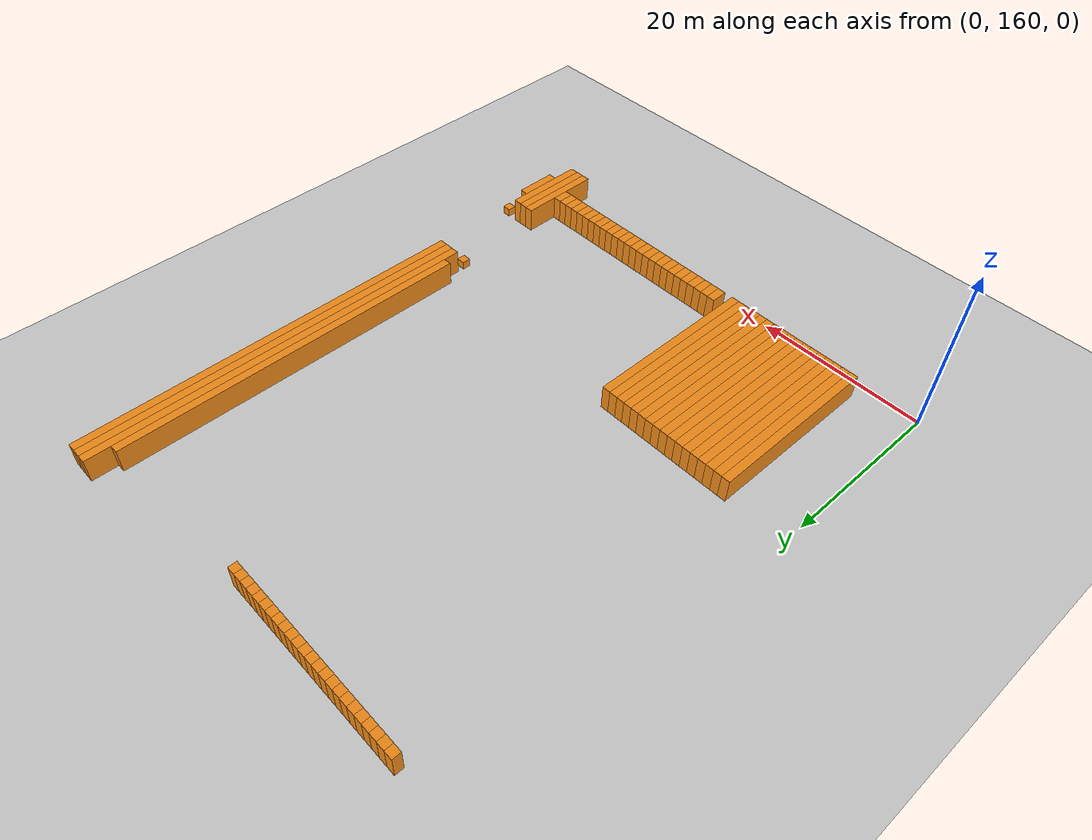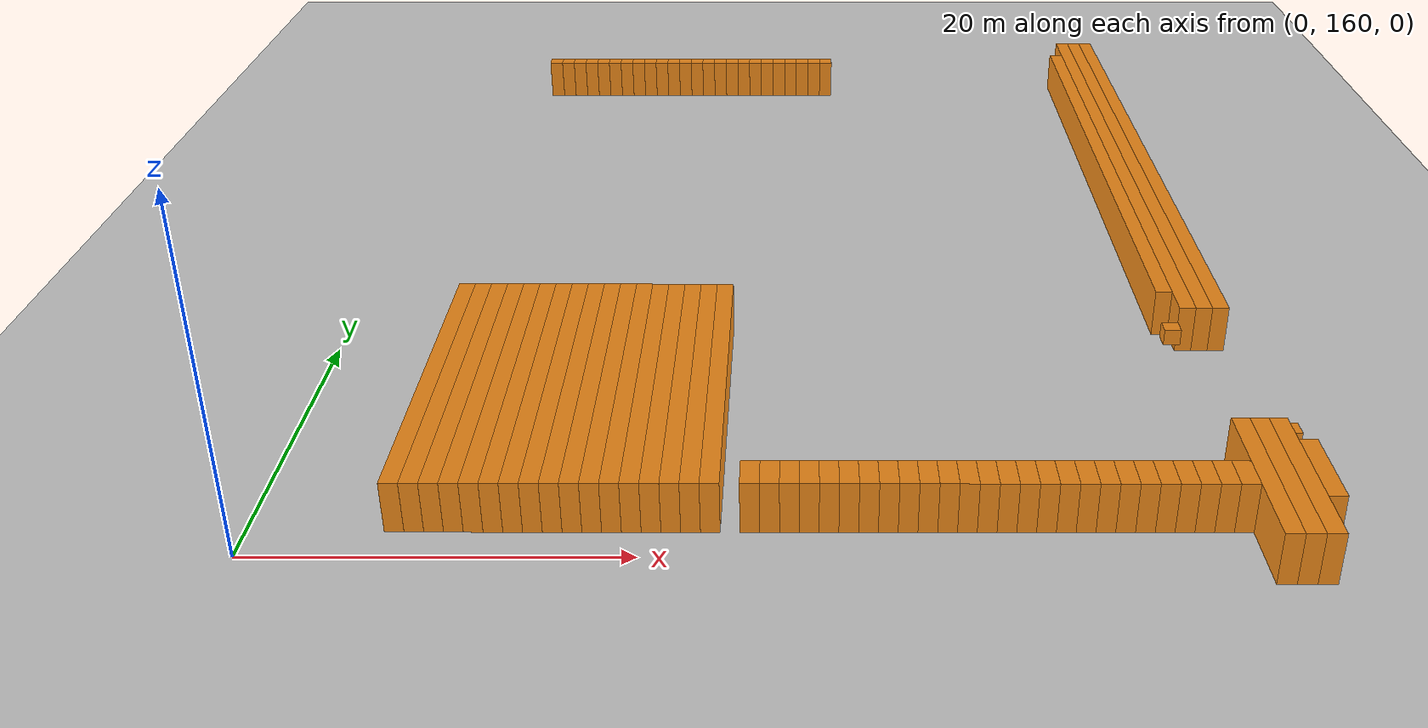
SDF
<sdf version="1.6">
 <world name="default">
  <include><uri>model://ground_plane</uri></include>
  <model name="unit_box_012">
   <pose>7.50   172.50     1.50 0 0 0</pose>
   <static>1</static>
   <link name="link">
    <inertial>
     <mass>5000</mass>
     <inertia><ixx>200</ixx><ixy>0</ixy><ixz>0</ixz><iyy>200</iyy><iyz>0</iyz><izz>200</izz></inertia>
    </inertial>
    <collision name="collision"><geometry><box><size>1 21 3</size></box></geometry></collision>
    <visual name="visual">
     <geometry><box><size>1 21 3</size></box></geometry>
     <material>
      <script><name>Gazebo/Orange</name><uri>file://media/materials/scripts/gazebo.material</uri></script>
     </material>
    </visual>
   </link>
  </model>
  <model name="unit_box_013">
   <pose>7.50   223.50     1.50 0 0 0</pose>
   <static>1</static>
   <link name="link">
    <inertial>
     <mass>5000</mass>
     <inertia><ixx>200</ixx><ixy>0</ixy><ixz>0</ixz><iyy>200</iyy><iyz>0</iyz><izz>200</izz></inertia>
    </inertial>
    <collision name="collision"><geometry><box><size>1 1 3</size></box></geometry></collision>
    <visual name="visual">
     <geometry><box><size>1 1 3</size></box></geometry>
     <material>
      <script><name>Gazebo/Orange</name><uri>file://media/materials/scripts/gazebo.material</uri></script>
     </material>
    </visual>
   </link>
  </model>
  <model name="unit_box_025">
   <pose>8.50   172.50     1.50 0 0 0</pose>
   <static>1</static>
   <link name="link">
    <inertial>
     <mass>5000</mass>
     <inertia><ixx>200</ixx><ixy>0</ixy><ixz>0</ixz><iyy>200</iyy><iyz>0</iyz><izz>200</izz></inertia>
    </inertial>
    <collision name="collision"><geometry><box><size>1 21 3</size></box></geometry></collision>
    <visual name="visual">
     <geometry><box><size>1 21 3</size></box></geometry>
     <material>
      <script><name>Gazebo/Orange</name><uri>file://media/materials/scripts/gazebo.material</uri></script>
     </material>
    </visual>
   </link>
  </model>
  <model name="unit_box_026">
   <pose>8.50   223.50     1.50 0 0 0</pose>
   <static>1</static>
   <link name="link">
    <inertial>
     <mass>5000</mass>
     <inertia><ixx>200</ixx><ixy>0</ixy><ixz>0</ixz><iyy>200</iyy><iyz>0</iyz><izz>200</izz></inertia>
    </inertial>
    <collision name="collision"><geometry><box><size>1 1 3</size></box></geometry></collision>
    <visual name="visual">
     <geometry><box><size>1 1 3</size></box></geometry>
     <material>
      <script><name>Gazebo/Orange</name><uri>file://media/materials/scripts/gazebo.material</uri></script>
     </material>
    </visual>
   </link>
  </model>
  <model name="unit_box_038">
   <pose>9.50   172.50     1.50 0 0 0</pose>
   <static>1</static>
   <link name="link">
    <inertial>
     <mass>5000</mass>
     <inertia><ixx>200</ixx><ixy>0</ixy><ixz>0</ixz><iyy>200</iyy><iyz>0</iyz><izz>200</izz></inertia>
    </inertial>
    <collision name="collision"><geometry><box><size>1 21 3</size></box></geometry></collision>
    <visual name="visual">
     <geometry><box><size>1 21 3</size></box></geometry>
     <material>
      <script><name>Gazebo/Orange</name><uri>file://media/materials/scripts/gazebo.material</uri></script>
     </material>
    </visual>
   </link>
  </model>
  <model name="unit_box_039">
   <pose>9.50   223.50     1.50 0 0 0</pose>
   <static>1</static>
   <link name="link">
    <inertial>
     <mass>5000</mass>
     <inertia><ixx>200</ixx><ixy>0</ixy><ixz>0</ixz><iyy>200</iyy><iyz>0</iyz><izz>200</izz></inertia>
    </inertial>
    <collision name="collision"><geometry><box><size>1 1 3</size></box></geometry></collision>
    <visual name="visual">
     <geometry><box><size>1 1 3</size></box></geometry>
     <material>
      <script><name>Gazebo/Orange</name><uri>file://media/materials/scripts/gazebo.material</uri></script>
     </material>
    </visual>
   </link>
  </model>
  <model name="unit_box_051">
   <pose>10.50   172.50     1.50 0 0 0</pose>
   <static>1</static>
   <link name="link">
    <inertial>
     <mass>5000</mass>
     <inertia><ixx>200</ixx><ixy>0</ixy><ixz>0</ixz><iyy>200</iyy><iyz>0</iyz><izz>200</izz></inertia>
    </inertial>
    <collision name="collision"><geometry><box><size>1 21 3</size></box></geometry></collision>
    <visual name="visual">
     <geometry><box><size>1 21 3</size></box></geometry>
     <material>
      <script><name>Gazebo/Orange</name><uri>file://media/materials/scripts/gazebo.material</uri></script>
     </material>
    </visual>
   </link>
  </model>
  <model name="unit_box_052">
   <pose>10.50   223.50     1.50 0 0 0</pose>
   <static>1</static>
   <link name="link">
    <inertial>
     <mass>5000</mass>
     <inertia><ixx>200</ixx><ixy>0</ixy><ixz>0</ixz><iyy>200</iyy><iyz>0</iyz><izz>200</izz></inertia>
    </inertial>
    <collision name="collision"><geometry><box><size>1 1 3</size></box></geometry></collision>
    <visual name="visual">
     <geometry><box><size>1 1 3</size></box></geometry>
     <material>
      <script><name>Gazebo/Orange</name><uri>file://media/materials/scripts/gazebo.material</uri></script>
     </material>
    </visual>
   </link>
  </model>
  <model name="unit_box_064">
   <pose>11.50   172.50     1.50 0 0 0</pose>
   <static>1</static>
   <link name="link">
    <inertial>
     <mass>5000</mass>
     <inertia><ixx>200</ixx><ixy>0</ixy><ixz>0</ixz><iyy>200</iyy><iyz>0</iyz><izz>200</izz></inertia>
    </inertial>
    <collision name="collision"><geometry><box><size>1 21 3</size></box></geometry></collision>
    <visual name="visual">
     <geometry><box><size>1 21 3</size></box></geometry>
     <material>
      <script><name>Gazebo/Orange</name><uri>file://media/materials/scripts/gazebo.material</uri></script>
     </material>
    </visual>
   </link>
  </model>
  <model name="unit_box_065">
   <pose>11.50   223.50     1.50 0 0 0</pose>
   <static>1</static>
   <link name="link">
    <inertial>
     <mass>5000</mass>
     <inertia><ixx>200</ixx><ixy>0</ixy><ixz>0</ixz><iyy>200</iyy><iyz>0</iyz><izz>200</izz></inertia>
    </inertial>
    <collision name="collision"><geometry><box><size>1 1 3</size></box></geometry></collision>
    <visual name="visual">
     <geometry><box><size>1 1 3</size></box></geometry>
     <material>
      <script><name>Gazebo/Orange</name><uri>file://media/materials/scripts/gazebo.material</uri></script>
     </material>
    </visual>
   </link>
  </model>
  <model name="unit_box_077">
   <pose>12.50   172.50     1.50 0 0 0</pose>
   <static>1</static>
   <link name="link">
    <inertial>
     <mass>5000</mass>
     <inertia><ixx>200</ixx><ixy>0</ixy><ixz>0</ixz><iyy>200</iyy><iyz>0</iyz><izz>200</izz></inertia>
    </inertial>
    <collision name="collision"><geometry><box><size>1 21 3</size></box></geometry></collision>
    <visual name="visual">
     <geometry><box><size>1 21 3</size></box></geometry>
     <material>
      <script><name>Gazebo/Orange</name><uri>file://media/materials/scripts/gazebo.material</uri></script>
     </material>
    </visual>
   </link>
  </model>
  <model name="unit_box_078">
   <pose>12.50   223.50     1.50 0 0 0</pose>
   <static>1</static>
   <link name="link">
    <inertial>
     <mass>5000</mass>
     <inertia><ixx>200</ixx><ixy>0</ixy><ixz>0</ixz><iyy>200</iyy><iyz>0</iyz><izz>200</izz></inertia>
    </inertial>
    <collision name="collision"><geometry><box><size>1 1 3</size></box></geometry></collision>
    <visual name="visual">
     <geometry><box><size>1 1 3</size></box></geometry>
     <material>
      <script><name>Gazebo/Orange</name><uri>file://media/materials/scripts/gazebo.material</uri></script>
     </material>
    </visual>
   </link>
  </model>
  <model name="unit_box_090">
   <pose>13.50   172.50     1.50 0 0 0</pose>
   <static>1</static>
   <link name="link">
    <inertial>
     <mass>5000</mass>
     <inertia><ixx>200</ixx><ixy>0</ixy><ixz>0</ixz><iyy>200</iyy><iyz>0</iyz><izz>200</izz></inertia>
    </inertial>
    <collision name="collision"><geometry><box><size>1 21 3</size></box></geometry></collision>
    <visual name="visual">
     <geometry><box><size>1 21 3</size></box></geometry>
     <material>
      <script><name>Gazebo/Orange</name><uri>file://media/materials/scripts/gazebo.material</uri></script>
     </material>
    </visual>
   </link>
  </model>
  <model name="unit_box_091">
   <pose>13.50   223.50     1.50 0 0 0</pose>
   <static>1</static>
   <link name="link">
    <inertial>
     <mass>5000</mass>
     <inertia><ixx>200</ixx><ixy>0</ixy><ixz>0</ixz><iyy>200</iyy><iyz>0</iyz><izz>200</izz></inertia>
    </inertial>
    <collision name="collision"><geometry><box><size>1 1 3</size></box></geometry></collision>
    <visual name="visual">
     <geometry><box><size>1 1 3</size></box></geometry>
     <material>
      <script><name>Gazebo/Orange</name><uri>file://media/materials/scripts/gazebo.material</uri></script>
     </material>
    </visual>
   </link>
  </model>
  <model name="unit_box_103">
   <pose>14.50   172.50     1.50 0 0 0</pose>
   <static>1</static>
   <link name="link">
    <inertial>
     <mass>5000</mass>
     <inertia><ixx>200</ixx><ixy>0</ixy><ixz>0</ixz><iyy>200</iyy><iyz>0</iyz><izz>200</izz></inertia>
    </inertial>
    <collision name="collision"><geometry><box><size>1 21 3</size></box></geometry></collision>
    <visual name="visual">
     <geometry><box><size>1 21 3</size></box></geometry>
     <material>
      <script><name>Gazebo/Orange</name><uri>file://media/materials/scripts/gazebo.material</uri></script>
     </material>
    </visual>
   </link>
  </model>
  <model name="unit_box_104">
   <pose>14.50   223.50     1.50 0 0 0</pose>
   <static>1</static>
   <link name="link">
    <inertial>
     <mass>5000</mass>
     <inertia><ixx>200</ixx><ixy>0</ixy><ixz>0</ixz><iyy>200</iyy><iyz>0</iyz><izz>200</izz></inertia>
    </inertial>
    <collision name="collision"><geometry><box><size>1 1 3</size></box></geometry></collision>
    <visual name="visual">
     <geometry><box><size>1 1 3</size></box></geometry>
     <material>
      <script><name>Gazebo/Orange</name><uri>file://media/materials/scripts/gazebo.material</uri></script>
     </material>
    </visual>
   </link>
  </model>
  <model name="unit_box_116">
   <pose>15.50   172.50     1.50 0 0 0</pose>
   <static>1</static>
   <link name="link">
    <inertial>
     <mass>5000</mass>
     <inertia><ixx>200</ixx><ixy>0</ixy><ixz>0</ixz><iyy>200</iyy><iyz>0</iyz><izz>200</izz></inertia>
    </inertial>
    <collision name="collision"><geometry><box><size>1 21 3</size></box></geometry></collision>
    <visual name="visual">
     <geometry><box><size>1 21 3</size></box></geometry>
     <material>
      <script><name>Gazebo/Orange</name><uri>file://media/materials/scripts/gazebo.material</uri></script>
     </material>
    </visual>
   </link>
  </model>
  <model name="unit_box_117">
   <pose>15.50   223.50     1.50 0 0 0</pose>
   <static>1</static>
   <link name="link">
    <inertial>
     <mass>5000</mass>
     <inertia><ixx>200</ixx><ixy>0</ixy><ixz>0</ixz><iyy>200</iyy><iyz>0</iyz><izz>200</izz></inertia>
    </inertial>
    <collision name="collision"><geometry><box><size>1 1 3</size></box></geometry></collision>
    <visual name="visual">
     <geometry><box><size>1 1 3</size></box></geometry>
     <material>
      <script><name>Gazebo/Orange</name><uri>file://media/materials/scripts/gazebo.material</uri></script>
     </material>
    </visual>
   </link>
  </model>
  <model name="unit_box_129">
   <pose>16.50   172.50     1.50 0 0 0</pose>
   <static>1</static>
   <link name="link">
    <inertial>
     <mass>5000</mass>
     <inertia><ixx>200</ixx><ixy>0</ixy><ixz>0</ixz><iyy>200</iyy><iyz>0</iyz><izz>200</izz></inertia>
    </inertial>
    <collision name="collision"><geometry><box><size>1 21 3</size></box></geometry></collision>
    <visual name="visual">
     <geometry><box><size>1 21 3</size></box></geometry>
     <material>
      <script><name>Gazebo/Orange</name><uri>file://media/materials/scripts/gazebo.material</uri></script>
     </material>
    </visual>
   </link>
  </model>
  <model name="unit_box_130">
   <pose>16.50   223.50     1.50 0 0 0</pose>
   <static>1</static>
   <link name="link">
    <inertial>
     <mass>5000</mass>
     <inertia><ixx>200</ixx><ixy>0</ixy><ixz>0</ixz><iyy>200</iyy><iyz>0</iyz><izz>200</izz></inertia>
    </inertial>
    <collision name="collision"><geometry><box><size>1 1 3</size></box></geometry></collision>
    <visual name="visual">
     <geometry><box><size>1 1 3</size></box></geometry>
     <material>
      <script><name>Gazebo/Orange</name><uri>file://media/materials/scripts/gazebo.material</uri></script>
     </material>
    </visual>
   </link>
  </model>
  <model name="unit_box_142">
   <pose>17.50   172.50     1.50 0 0 0</pose>
   <static>1</static>
   <link name="link">
    <inertial>
     <mass>5000</mass>
     <inertia><ixx>200</ixx><ixy>0</ixy><ixz>0</ixz><iyy>200</iyy><iyz>0</iyz><izz>200</izz></inertia>
    </inertial>
    <collision name="collision"><geometry><box><size>1 21 3</size></box></geometry></collision>
    <visual name="visual">
     <geometry><box><size>1 21 3</size></box></geometry>
     <material>
      <script><name>Gazebo/Orange</name><uri>file://media/materials/scripts/gazebo.material</uri></script>
     </material>
    </visual>
   </link>
  </model>
  <model name="unit_box_143">
   <pose>17.50   223.50     1.50 0 0 0</pose>
   <static>1</static>
   <link name="link">
    <inertial>
     <mass>5000</mass>
     <inertia><ixx>200</ixx><ixy>0</ixy><ixz>0</ixz><iyy>200</iyy><iyz>0</iyz><izz>200</izz></inertia>
    </inertial>
    <collision name="collision"><geometry><box><size>1 1 3</size></box></geometry></collision>
    <visual name="visual">
     <geometry><box><size>1 1 3</size></box></geometry>
     <material>
      <script><name>Gazebo/Orange</name><uri>file://media/materials/scripts/gazebo.material</uri></script>
     </material>
    </visual>
   </link>
  </model>
  <model name="unit_box_155">
   <pose>18.50   172.50     1.50 0 0 0</pose>
   <static>1</static>
   <link name="link">
    <inertial>
     <mass>5000</mass>
     <inertia><ixx>200</ixx><ixy>0</ixy><ixz>0</ixz><iyy>200</iyy><iyz>0</iyz><izz>200</izz></inertia>
    </inertial>
    <collision name="collision"><geometry><box><size>1 21 3</size></box></geometry></collision>
    <visual name="visual">
     <geometry><box><size>1 21 3</size></box></geometry>
     <material>
      <script><name>Gazebo/Orange</name><uri>file://media/materials/scripts/gazebo.material</uri></script>
     </material>
    </visual>
   </link>
  </model>
  <model name="unit_box_156">
   <pose>18.50   223.50     1.50 0 0 0</pose>
   <static>1</static>
   <link name="link">
    <inertial>
     <mass>5000</mass>
     <inertia><ixx>200</ixx><ixy>0</ixy><ixz>0</ixz><iyy>200</iyy><iyz>0</iyz><izz>200</izz></inertia>
    </inertial>
    <collision name="collision"><geometry><box><size>1 1 3</size></box></geometry></collision>
    <visual name="visual">
     <geometry><box><size>1 1 3</size></box></geometry>
     <material>
      <script><name>Gazebo/Orange</name><uri>file://media/materials/scripts/gazebo.material</uri></script>
     </material>
    </visual>
   </link>
  </model>
  <model name="unit_box_168">
   <pose>19.50   172.50     1.50 0 0 0</pose>
   <static>1</static>
   <link name="link">
    <inertial>
     <mass>5000</mass>
     <inertia><ixx>200</ixx><ixy>0</ixy><ixz>0</ixz><iyy>200</iyy><iyz>0</iyz><izz>200</izz></inertia>
    </inertial>
    <collision name="collision"><geometry><box><size>1 21 3</size></box></geometry></collision>
    <visual name="visual">
     <geometry><box><size>1 21 3</size></box></geometry>
     <material>
      <script><name>Gazebo/Orange</name><uri>file://media/materials/scripts/gazebo.material</uri></script>
     </material>
    </visual>
   </link>
  </model>
  <model name="unit_box_169">
   <pose>19.50   223.50     1.50 0 0 0</pose>
   <static>1</static>
   <link name="link">
    <inertial>
     <mass>5000</mass>
     <inertia><ixx>200</ixx><ixy>0</ixy><ixz>0</ixz><iyy>200</iyy><iyz>0</iyz><izz>200</izz></inertia>
    </inertial>
    <collision name="collision"><geometry><box><size>1 1 3</size></box></geometry></collision>
    <visual name="visual">
     <geometry><box><size>1 1 3</size></box></geometry>
     <material>
      <script><name>Gazebo/Orange</name><uri>file://media/materials/scripts/gazebo.material</uri></script>
     </material>
    </visual>
   </link>
  </model>
  <model name="unit_box_181">
   <pose>20.50   172.50     1.50 0 0 0</pose>
   <static>1</static>
   <link name="link">
    <inertial>
     <mass>5000</mass>
     <inertia><ixx>200</ixx><ixy>0</ixy><ixz>0</ixz><iyy>200</iyy><iyz>0</iyz><izz>200</izz></inertia>
    </inertial>
    <collision name="collision"><geometry><box><size>1 21 3</size></box></geometry></collision>
    <visual name="visual">
     <geometry><box><size>1 21 3</size></box></geometry>
     <material>
      <script><name>Gazebo/Orange</name><uri>file://media/materials/scripts/gazebo.material</uri></script>
     </material>
    </visual>
   </link>
  </model>
  <model name="unit_box_182">
   <pose>20.50   223.50     1.50 0 0 0</pose>
   <static>1</static>
   <link name="link">
    <inertial>
     <mass>5000</mass>
     <inertia><ixx>200</ixx><ixy>0</ixy><ixz>0</ixz><iyy>200</iyy><iyz>0</iyz><izz>200</izz></inertia>
    </inertial>
    <collision name="collision"><geometry><box><size>1 1 3</size></box></geometry></collision>
    <visual name="visual">
     <geometry><box><size>1 1 3</size></box></geometry>
     <material>
      <script><name>Gazebo/Orange</name><uri>file://media/materials/scripts/gazebo.material</uri></script>
     </material>
    </visual>
   </link>
  </model>
  <model name="unit_box_194">
   <pose>21.50   172.50     1.50 0 0 0</pose>
   <static>1</static>
   <link name="link">
    <inertial>
     <mass>5000</mass>
     <inertia><ixx>200</ixx><ixy>0</ixy><ixz>0</ixz><iyy>200</iyy><iyz>0</iyz><izz>200</izz></inertia>
    </inertial>
    <collision name="collision"><geometry><box><size>1 21 3</size></box></geometry></collision>
    <visual name="visual">
     <geometry><box><size>1 21 3</size></box></geometry>
     <material>
      <script><name>Gazebo/Orange</name><uri>file://media/materials/scripts/gazebo.material</uri></script>
     </material>
    </visual>
   </link>
  </model>
  <model name="unit_box_195">
   <pose>21.50   223.50     1.50 0 0 0</pose>
   <static>1</static>
   <link name="link">
    <inertial>
     <mass>5000</mass>
     <inertia><ixx>200</ixx><ixy>0</ixy><ixz>0</ixz><iyy>200</iyy><iyz>0</iyz><izz>200</izz></inertia>
    </inertial>
    <collision name="collision"><geometry><box><size>1 1 3</size></box></geometry></collision>
    <visual name="visual">
     <geometry><box><size>1 1 3</size></box></geometry>
     <material>
      <script><name>Gazebo/Orange</name><uri>file://media/materials/scripts/gazebo.material</uri></script>
     </material>
    </visual>
   </link>
  </model>
  <model name="unit_box_207">
   <pose>22.50   172.50     1.50 0 0 0</pose>
   <static>1</static>
   <link name="link">
    <inertial>
     <mass>5000</mass>
     <inertia><ixx>200</ixx><ixy>0</ixy><ixz>0</ixz><iyy>200</iyy><iyz>0</iyz><izz>200</izz></inertia>
    </inertial>
    <collision name="collision"><geometry><box><size>1 21 3</size></box></geometry></collision>
    <visual name="visual">
     <geometry><box><size>1 21 3</size></box></geometry>
     <material>
      <script><name>Gazebo/Orange</name><uri>file://media/materials/scripts/gazebo.material</uri></script>
     </material>
    </visual>
   </link>
  </model>
  <model name="unit_box_208">
   <pose>22.50   223.50     1.50 0 0 0</pose>
   <static>1</static>
   <link name="link">
    <inertial>
     <mass>5000</mass>
     <inertia><ixx>200</ixx><ixy>0</ixy><ixz>0</ixz><iyy>200</iyy><iyz>0</iyz><izz>200</izz></inertia>
    </inertial>
    <collision name="collision"><geometry><box><size>1 1 3</size></box></geometry></collision>
    <visual name="visual">
     <geometry><box><size>1 1 3</size></box></geometry>
     <material>
      <script><name>Gazebo/Orange</name><uri>file://media/materials/scripts/gazebo.material</uri></script>
     </material>
    </visual>
   </link>
  </model>
  <model name="unit_box_220">
   <pose>23.50   172.50     1.50 0 0 0</pose>
   <static>1</static>
   <link name="link">
    <inertial>
     <mass>5000</mass>
     <inertia><ixx>200</ixx><ixy>0</ixy><ixz>0</ixz><iyy>200</iyy><iyz>0</iyz><izz>200</izz></inertia>
    </inertial>
    <collision name="collision"><geometry><box><size>1 21 3</size></box></geometry></collision>
    <visual name="visual">
     <geometry><box><size>1 21 3</size></box></geometry>
     <material>
      <script><name>Gazebo/Orange</name><uri>file://media/materials/scripts/gazebo.material</uri></script>
     </material>
    </visual>
   </link>
  </model>
  <model name="unit_box_221">
   <pose>23.50   223.50     1.50 0 0 0</pose>
   <static>1</static>
   <link name="link">
    <inertial>
     <mass>5000</mass>
     <inertia><ixx>200</ixx><ixy>0</ixy><ixz>0</ixz><iyy>200</iyy><iyz>0</iyz><izz>200</izz></inertia>
    </inertial>
    <collision name="collision"><geometry><box><size>1 1 3</size></box></geometry></collision>
    <visual name="visual">
     <geometry><box><size>1 1 3</size></box></geometry>
     <material>
      <script><name>Gazebo/Orange</name><uri>file://media/materials/scripts/gazebo.material</uri></script>
     </material>
    </visual>
   </link>
  </model>
  <model name="unit_box_234">
   <pose>24.50   223.50     1.50 0 0 0</pose>
   <static>1</static>
   <link name="link">
    <inertial>
     <mass>5000</mass>
     <inertia><ixx>200</ixx><ixy>0</ixy><ixz>0</ixz><iyy>200</iyy><iyz>0</iyz><izz>200</izz></inertia>
    </inertial>
    <collision name="collision"><geometry><box><size>1 1 3</size></box></geometry></collision>
    <visual name="visual">
     <geometry><box><size>1 1 3</size></box></geometry>
     <material>
      <script><name>Gazebo/Orange</name><uri>file://media/materials/scripts/gazebo.material</uri></script>
     </material>
    </visual>
   </link>
  </model>
  <model name="unit_box_246">
   <pose>25.50   163.00     1.50 0 0 0</pose>
   <static>1</static>
   <link name="link">
    <inertial>
     <mass>5000</mass>
     <inertia><ixx>200</ixx><ixy>0</ixy><ixz>0</ixz><iyy>200</iyy><iyz>0</iyz><izz>200</izz></inertia>
    </inertial>
    <collision name="collision"><geometry><box><size>1 2 3</size></box></geometry></collision>
    <visual name="visual">
     <geometry><box><size>1 2 3</size></box></geometry>
     <material>
      <script><name>Gazebo/Orange</name><uri>file://media/materials/scripts/gazebo.material</uri></script>
     </material>
    </visual>
   </link>
  </model>
  <model name="unit_box_247">
   <pose>25.50   223.50     1.50 0 0 0</pose>
   <static>1</static>
   <link name="link">
    <inertial>
     <mass>5000</mass>
     <inertia><ixx>200</ixx><ixy>0</ixy><ixz>0</ixz><iyy>200</iyy><iyz>0</iyz><izz>200</izz></inertia>
    </inertial>
    <collision name="collision"><geometry><box><size>1 1 3</size></box></geometry></collision>
    <visual name="visual">
     <geometry><box><size>1 1 3</size></box></geometry>
     <material>
      <script><name>Gazebo/Orange</name><uri>file://media/materials/scripts/gazebo.material</uri></script>
     </material>
    </visual>
   </link>
  </model>
  <model name="unit_box_259">
   <pose>26.50   163.00     1.50 0 0 0</pose>
   <static>1</static>
   <link name="link">
    <inertial>
     <mass>5000</mass>
     <inertia><ixx>200</ixx><ixy>0</ixy><ixz>0</ixz><iyy>200</iyy><iyz>0</iyz><izz>200</izz></inertia>
    </inertial>
    <collision name="collision"><geometry><box><size>1 2 3</size></box></geometry></collision>
    <visual name="visual">
     <geometry><box><size>1 2 3</size></box></geometry>
     <material>
      <script><name>Gazebo/Orange</name><uri>file://media/materials/scripts/gazebo.material</uri></script>
     </material>
    </visual>
   </link>
  </model>
  <model name="unit_box_260">
   <pose>26.50   223.50     1.50 0 0 0</pose>
   <static>1</static>
   <link name="link">
    <inertial>
     <mass>5000</mass>
     <inertia><ixx>200</ixx><ixy>0</ixy><ixz>0</ixz><iyy>200</iyy><iyz>0</iyz><izz>200</izz></inertia>
    </inertial>
    <collision name="collision"><geometry><box><size>1 1 3</size></box></geometry></collision>
    <visual name="visual">
     <geometry><box><size>1 1 3</size></box></geometry>
     <material>
      <script><name>Gazebo/Orange</name><uri>file://media/materials/scripts/gazebo.material</uri></script>
     </material>
    </visual>
   </link>
  </model>
  <model name="unit_box_272">
   <pose>27.50   163.00     1.50 0 0 0</pose>
   <static>1</static>
   <link name="link">
    <inertial>
     <mass>5000</mass>
     <inertia><ixx>200</ixx><ixy>0</ixy><ixz>0</ixz><iyy>200</iyy><iyz>0</iyz><izz>200</izz></inertia>
    </inertial>
    <collision name="collision"><geometry><box><size>1 2 3</size></box></geometry></collision>
    <visual name="visual">
     <geometry><box><size>1 2 3</size></box></geometry>
     <material>
      <script><name>Gazebo/Orange</name><uri>file://media/materials/scripts/gazebo.material</uri></script>
     </material>
    </visual>
   </link>
  </model>
  <model name="unit_box_273">
   <pose>27.50   223.50     1.50 0 0 0</pose>
   <static>1</static>
   <link name="link">
    <inertial>
     <mass>5000</mass>
     <inertia><ixx>200</ixx><ixy>0</ixy><ixz>0</ixz><iyy>200</iyy><iyz>0</iyz><izz>200</izz></inertia>
    </inertial>
    <collision name="collision"><geometry><box><size>1 1 3</size></box></geometry></collision>
    <visual name="visual">
     <geometry><box><size>1 1 3</size></box></geometry>
     <material>
      <script><name>Gazebo/Orange</name><uri>file://media/materials/scripts/gazebo.material</uri></script>
     </material>
    </visual>
   </link>
  </model>
  <model name="unit_box_285">
   <pose>28.50   163.00     1.50 0 0 0</pose>
   <static>1</static>
   <link name="link">
    <inertial>
     <mass>5000</mass>
     <inertia><ixx>200</ixx><ixy>0</ixy><ixz>0</ixz><iyy>200</iyy><iyz>0</iyz><izz>200</izz></inertia>
    </inertial>
    <collision name="collision"><geometry><box><size>1 2 3</size></box></geometry></collision>
    <visual name="visual">
     <geometry><box><size>1 2 3</size></box></geometry>
     <material>
      <script><name>Gazebo/Orange</name><uri>file://media/materials/scripts/gazebo.material</uri></script>
     </material>
    </visual>
   </link>
  </model>
  <model name="unit_box_286">
   <pose>28.50   223.50     1.50 0 0 0</pose>
   <static>1</static>
   <link name="link">
    <inertial>
     <mass>5000</mass>
     <inertia><ixx>200</ixx><ixy>0</ixy><ixz>0</ixz><iyy>200</iyy><iyz>0</iyz><izz>200</izz></inertia>
    </inertial>
    <collision name="collision"><geometry><box><size>1 1 3</size></box></geometry></collision>
    <visual name="visual">
     <geometry><box><size>1 1 3</size></box></geometry>
     <material>
      <script><name>Gazebo/Orange</name><uri>file://media/materials/scripts/gazebo.material</uri></script>
     </material>
    </visual>
   </link>
  </model>
  <model name="unit_box_298">
   <pose>29.50   163.00     1.50 0 0 0</pose>
   <static>1</static>
   <link name="link">
    <inertial>
     <mass>5000</mass>
     <inertia><ixx>200</ixx><ixy>0</ixy><ixz>0</ixz><iyy>200</iyy><iyz>0</iyz><izz>200</izz></inertia>
    </inertial>
    <collision name="collision"><geometry><box><size>1 2 3</size></box></geometry></collision>
    <visual name="visual">
     <geometry><box><size>1 2 3</size></box></geometry>
     <material>
      <script><name>Gazebo/Orange</name><uri>file://media/materials/scripts/gazebo.material</uri></script>
     </material>
    </visual>
   </link>
  </model>
  <model name="unit_box_299">
   <pose>29.50   223.50     1.50 0 0 0</pose>
   <static>1</static>
   <link name="link">
    <inertial>
     <mass>5000</mass>
     <inertia><ixx>200</ixx><ixy>0</ixy><ixz>0</ixz><iyy>200</iyy><iyz>0</iyz><izz>200</izz></inertia>
    </inertial>
    <collision name="collision"><geometry><box><size>1 1 3</size></box></geometry></collision>
    <visual name="visual">
     <geometry><box><size>1 1 3</size></box></geometry>
     <material>
      <script><name>Gazebo/Orange</name><uri>file://media/materials/scripts/gazebo.material</uri></script>
     </material>
    </visual>
   </link>
  </model>
  <model name="unit_box_311">
   <pose>30.50   163.00     1.50 0 0 0</pose>
   <static>1</static>
   <link name="link">
    <inertial>
     <mass>5000</mass>
     <inertia><ixx>200</ixx><ixy>0</ixy><ixz>0</ixz><iyy>200</iyy><iyz>0</iyz><izz>200</izz></inertia>
    </inertial>
    <collision name="collision"><geometry><box><size>1 2 3</size></box></geometry></collision>
    <visual name="visual">
     <geometry><box><size>1 2 3</size></box></geometry>
     <material>
      <script><name>Gazebo/Orange</name><uri>file://media/materials/scripts/gazebo.material</uri></script>
     </material>
    </visual>
   </link>
  </model>
  <model name="unit_box_312">
   <pose>30.50   223.50     1.50 0 0 0</pose>
   <static>1</static>
   <link name="link">
    <inertial>
     <mass>5000</mass>
     <inertia><ixx>200</ixx><ixy>0</ixy><ixz>0</ixz><iyy>200</iyy><iyz>0</iyz><izz>200</izz></inertia>
    </inertial>
    <collision name="collision"><geometry><box><size>1 1 3</size></box></geometry></collision>
    <visual name="visual">
     <geometry><box><size>1 1 3</size></box></geometry>
     <material>
      <script><name>Gazebo/Orange</name><uri>file://media/materials/scripts/gazebo.material</uri></script>
     </material>
    </visual>
   </link>
  </model>
  <model name="unit_box_324">
   <pose>31.50   163.00     1.50 0 0 0</pose>
   <static>1</static>
   <link name="link">
    <inertial>
     <mass>5000</mass>
     <inertia><ixx>200</ixx><ixy>0</ixy><ixz>0</ixz><iyy>200</iyy><iyz>0</iyz><izz>200</izz></inertia>
    </inertial>
    <collision name="collision"><geometry><box><size>1 2 3</size></box></geometry></collision>
    <visual name="visual">
     <geometry><box><size>1 2 3</size></box></geometry>
     <material>
      <script><name>Gazebo/Orange</name><uri>file://media/materials/scripts/gazebo.material</uri></script>
     </material>
    </visual>
   </link>
  </model>
  <model name="unit_box_337">
   <pose>32.50   163.00     1.50 0 0 0</pose>
   <static>1</static>
   <link name="link">
    <inertial>
     <mass>5000</mass>
     <inertia><ixx>200</ixx><ixy>0</ixy><ixz>0</ixz><iyy>200</iyy><iyz>0</iyz><izz>200</izz></inertia>
    </inertial>
    <collision name="collision"><geometry><box><size>1 2 3</size></box></geometry></collision>
    <visual name="visual">
     <geometry><box><size>1 2 3</size></box></geometry>
     <material>
      <script><name>Gazebo/Orange</name><uri>file://media/materials/scripts/gazebo.material</uri></script>
     </material>
    </visual>
   </link>
  </model>
  <model name="unit_box_350">
   <pose>33.50   163.00     1.50 0 0 0</pose>
   <static>1</static>
   <link name="link">
    <inertial>
     <mass>5000</mass>
     <inertia><ixx>200</ixx><ixy>0</ixy><ixz>0</ixz><iyy>200</iyy><iyz>0</iyz><izz>200</izz></inertia>
    </inertial>
    <collision name="collision"><geometry><box><size>1 2 3</size></box></geometry></collision>
    <visual name="visual">
     <geometry><box><size>1 2 3</size></box></geometry>
     <material>
      <script><name>Gazebo/Orange</name><uri>file://media/materials/scripts/gazebo.material</uri></script>
     </material>
    </visual>
   </link>
  </model>
  <model name="unit_box_363">
   <pose>34.50   163.00     1.50 0 0 0</pose>
   <static>1</static>
   <link name="link">
    <inertial>
     <mass>5000</mass>
     <inertia><ixx>200</ixx><ixy>0</ixy><ixz>0</ixz><iyy>200</iyy><iyz>0</iyz><izz>200</izz></inertia>
    </inertial>
    <collision name="collision"><geometry><box><size>1 2 3</size></box></geometry></collision>
    <visual name="visual">
     <geometry><box><size>1 2 3</size></box></geometry>
     <material>
      <script><name>Gazebo/Orange</name><uri>file://media/materials/scripts/gazebo.material</uri></script>
     </material>
    </visual>
   </link>
  </model>
  <model name="unit_box_376">
   <pose>35.50   163.00     1.50 0 0 0</pose>
   <static>1</static>
   <link name="link">
    <inertial>
     <mass>5000</mass>
     <inertia><ixx>200</ixx><ixy>0</ixy><ixz>0</ixz><iyy>200</iyy><iyz>0</iyz><izz>200</izz></inertia>
    </inertial>
    <collision name="collision"><geometry><box><size>1 2 3</size></box></geometry></collision>
    <visual name="visual">
     <geometry><box><size>1 2 3</size></box></geometry>
     <material>
      <script><name>Gazebo/Orange</name><uri>file://media/materials/scripts/gazebo.material</uri></script>
     </material>
    </visual>
   </link>
  </model>
  <model name="unit_box_389">
   <pose>36.50   163.00     1.50 0 0 0</pose>
   <static>1</static>
   <link name="link">
    <inertial>
     <mass>5000</mass>
     <inertia><ixx>200</ixx><ixy>0</ixy><ixz>0</ixz><iyy>200</iyy><iyz>0</iyz><izz>200</izz></inertia>
    </inertial>
    <collision name="collision"><geometry><box><size>1 2 3</size></box></geometry></collision>
    <visual name="visual">
     <geometry><box><size>1 2 3</size></box></geometry>
     <material>
      <script><name>Gazebo/Orange</name><uri>file://media/materials/scripts/gazebo.material</uri></script>
     </material>
    </visual>
   </link>
  </model>
  <model name="unit_box_402">
   <pose>37.50   163.00     1.50 0 0 0</pose>
   <static>1</static>
   <link name="link">
    <inertial>
     <mass>5000</mass>
     <inertia><ixx>200</ixx><ixy>0</ixy><ixz>0</ixz><iyy>200</iyy><iyz>0</iyz><izz>200</izz></inertia>
    </inertial>
    <collision name="collision"><geometry><box><size>1 2 3</size></box></geometry></collision>
    <visual name="visual">
     <geometry><box><size>1 2 3</size></box></geometry>
     <material>
      <script><name>Gazebo/Orange</name><uri>file://media/materials/scripts/gazebo.material</uri></script>
     </material>
    </visual>
   </link>
  </model>
  <model name="unit_box_415">
   <pose>38.50   163.00     1.50 0 0 0</pose>
   <static>1</static>
   <link name="link">
    <inertial>
     <mass>5000</mass>
     <inertia><ixx>200</ixx><ixy>0</ixy><ixz>0</ixz><iyy>200</iyy><iyz>0</iyz><izz>200</izz></inertia>
    </inertial>
    <collision name="collision"><geometry><box><size>1 2 3</size></box></geometry></collision>
    <visual name="visual">
     <geometry><box><size>1 2 3</size></box></geometry>
     <material>
      <script><name>Gazebo/Orange</name><uri>file://media/materials/scripts/gazebo.material</uri></script>
     </material>
    </visual>
   </link>
  </model>
  <model name="unit_box_428">
   <pose>39.50   163.00     1.50 0 0 0</pose>
   <static>1</static>
   <link name="link">
    <inertial>
     <mass>5000</mass>
     <inertia><ixx>200</ixx><ixy>0</ixy><ixz>0</ixz><iyy>200</iyy><iyz>0</iyz><izz>200</izz></inertia>
    </inertial>
    <collision name="collision"><geometry><box><size>1 2 3</size></box></geometry></collision>
    <visual name="visual">
     <geometry><box><size>1 2 3</size></box></geometry>
     <material>
      <script><name>Gazebo/Orange</name><uri>file://media/materials/scripts/gazebo.material</uri></script>
     </material>
    </visual>
   </link>
  </model>
  <model name="unit_box_441">
   <pose>40.50   163.00     1.50 0 0 0</pose>
   <static>1</static>
   <link name="link">
    <inertial>
     <mass>5000</mass>
     <inertia><ixx>200</ixx><ixy>0</ixy><ixz>0</ixz><iyy>200</iyy><iyz>0</iyz><izz>200</izz></inertia>
    </inertial>
    <collision name="collision"><geometry><box><size>1 2 3</size></box></geometry></collision>
    <visual name="visual">
     <geometry><box><size>1 2 3</size></box></geometry>
     <material>
      <script><name>Gazebo/Orange</name><uri>file://media/materials/scripts/gazebo.material</uri></script>
     </material>
    </visual>
   </link>
  </model>
  <model name="unit_box_454">
   <pose>41.50   163.00     1.50 0 0 0</pose>
   <static>1</static>
   <link name="link">
    <inertial>
     <mass>5000</mass>
     <inertia><ixx>200</ixx><ixy>0</ixy><ixz>0</ixz><iyy>200</iyy><iyz>0</iyz><izz>200</izz></inertia>
    </inertial>
    <collision name="collision"><geometry><box><size>1 2 3</size></box></geometry></collision>
    <visual name="visual">
     <geometry><box><size>1 2 3</size></box></geometry>
     <material>
      <script><name>Gazebo/Orange</name><uri>file://media/materials/scripts/gazebo.material</uri></script>
     </material>
    </visual>
   </link>
  </model>
  <model name="unit_box_467">
   <pose>42.50   163.00     1.50 0 0 0</pose>
   <static>1</static>
   <link name="link">
    <inertial>
     <mass>5000</mass>
     <inertia><ixx>200</ixx><ixy>0</ixy><ixz>0</ixz><iyy>200</iyy><iyz>0</iyz><izz>200</izz></inertia>
    </inertial>
    <collision name="collision"><geometry><box><size>1 2 3</size></box></geometry></collision>
    <visual name="visual">
     <geometry><box><size>1 2 3</size></box></geometry>
     <material>
      <script><name>Gazebo/Orange</name><uri>file://media/materials/scripts/gazebo.material</uri></script>
     </material>
    </visual>
   </link>
  </model>
  <model name="unit_box_480">
   <pose>43.50   163.00     1.50 0 0 0</pose>
   <static>1</static>
   <link name="link">
    <inertial>
     <mass>5000</mass>
     <inertia><ixx>200</ixx><ixy>0</ixy><ixz>0</ixz><iyy>200</iyy><iyz>0</iyz><izz>200</izz></inertia>
    </inertial>
    <collision name="collision"><geometry><box><size>1 2 3</size></box></geometry></collision>
    <visual name="visual">
     <geometry><box><size>1 2 3</size></box></geometry>
     <material>
      <script><name>Gazebo/Orange</name><uri>file://media/materials/scripts/gazebo.material</uri></script>
     </material>
    </visual>
   </link>
  </model>
  <model name="unit_box_493">
   <pose>44.50   163.00     1.50 0 0 0</pose>
   <static>1</static>
   <link name="link">
    <inertial>
     <mass>5000</mass>
     <inertia><ixx>200</ixx><ixy>0</ixy><ixz>0</ixz><iyy>200</iyy><iyz>0</iyz><izz>200</izz></inertia>
    </inertial>
    <collision name="collision"><geometry><box><size>1 2 3</size></box></geometry></collision>
    <visual name="visual">
     <geometry><box><size>1 2 3</size></box></geometry>
     <material>
      <script><name>Gazebo/Orange</name><uri>file://media/materials/scripts/gazebo.material</uri></script>
     </material>
    </visual>
   </link>
  </model>
  <model name="unit_box_506">
   <pose>45.50   163.00     1.50 0 0 0</pose>
   <static>1</static>
   <link name="link">
    <inertial>
     <mass>5000</mass>
     <inertia><ixx>200</ixx><ixy>0</ixy><ixz>0</ixz><iyy>200</iyy><iyz>0</iyz><izz>200</izz></inertia>
    </inertial>
    <collision name="collision"><geometry><box><size>1 2 3</size></box></geometry></collision>
    <visual name="visual">
     <geometry><box><size>1 2 3</size></box></geometry>
     <material>
      <script><name>Gazebo/Orange</name><uri>file://media/materials/scripts/gazebo.material</uri></script>
     </material>
    </visual>
   </link>
  </model>
  <model name="unit_box_519">
   <pose>46.50   163.00     1.50 0 0 0</pose>
   <static>1</static>
   <link name="link">
    <inertial>
     <mass>5000</mass>
     <inertia><ixx>200</ixx><ixy>0</ixy><ixz>0</ixz><iyy>200</iyy><iyz>0</iyz><izz>200</izz></inertia>
    </inertial>
    <collision name="collision"><geometry><box><size>1 2 3</size></box></geometry></collision>
    <visual name="visual">
     <geometry><box><size>1 2 3</size></box></geometry>
     <material>
      <script><name>Gazebo/Orange</name><uri>file://media/materials/scripts/gazebo.material</uri></script>
     </material>
    </visual>
   </link>
  </model>
  <model name="unit_box_532">
   <pose>47.50   163.00     1.50 0 0 0</pose>
   <static>1</static>
   <link name="link">
    <inertial>
     <mass>5000</mass>
     <inertia><ixx>200</ixx><ixy>0</ixy><ixz>0</ixz><iyy>200</iyy><iyz>0</iyz><izz>200</izz></inertia>
    </inertial>
    <collision name="collision"><geometry><box><size>1 2 3</size></box></geometry></collision>
    <visual name="visual">
     <geometry><box><size>1 2 3</size></box></geometry>
     <material>
      <script><name>Gazebo/Orange</name><uri>file://media/materials/scripts/gazebo.material</uri></script>
     </material>
    </visual>
   </link>
  </model>
  <model name="unit_box_545">
   <pose>48.50   163.00     1.50 0 0 0</pose>
   <static>1</static>
   <link name="link">
    <inertial>
     <mass>5000</mass>
     <inertia><ixx>200</ixx><ixy>0</ixy><ixz>0</ixz><iyy>200</iyy><iyz>0</iyz><izz>200</izz></inertia>
    </inertial>
    <collision name="collision"><geometry><box><size>1 2 3</size></box></geometry></collision>
    <visual name="visual">
     <geometry><box><size>1 2 3</size></box></geometry>
     <material>
      <script><name>Gazebo/Orange</name><uri>file://media/materials/scripts/gazebo.material</uri></script>
     </material>
    </visual>
   </link>
  </model>
  <model name="unit_box_558">
   <pose>49.50   163.00     1.50 0 0 0</pose>
   <static>1</static>
   <link name="link">
    <inertial>
     <mass>5000</mass>
     <inertia><ixx>200</ixx><ixy>0</ixy><ixz>0</ixz><iyy>200</iyy><iyz>0</iyz><izz>200</izz></inertia>
    </inertial>
    <collision name="collision"><geometry><box><size>1 2 3</size></box></geometry></collision>
    <visual name="visual">
     <geometry><box><size>1 2 3</size></box></geometry>
     <material>
      <script><name>Gazebo/Orange</name><uri>file://media/materials/scripts/gazebo.material</uri></script>
     </material>
    </visual>
   </link>
  </model>
  <model name="unit_box_571">
   <pose>50.50   163.00     1.50 0 0 0</pose>
   <static>1</static>
   <link name="link">
    <inertial>
     <mass>5000</mass>
     <inertia><ixx>200</ixx><ixy>0</ixy><ixz>0</ixz><iyy>200</iyy><iyz>0</iyz><izz>200</izz></inertia>
    </inertial>
    <collision name="collision"><geometry><box><size>1 2 3</size></box></geometry></collision>
    <visual name="visual">
     <geometry><box><size>1 2 3</size></box></geometry>
     <material>
      <script><name>Gazebo/Orange</name><uri>file://media/materials/scripts/gazebo.material</uri></script>
     </material>
    </visual>
   </link>
  </model>
  <model name="unit_box_572">
   <pose>50.50   179.50     1.50 0 0 0</pose>
   <static>1</static>
   <link name="link">
    <inertial>
     <mass>5000</mass>
     <inertia><ixx>200</ixx><ixy>0</ixy><ixz>0</ixz><iyy>200</iyy><iyz>0</iyz><izz>200</izz></inertia>
    </inertial>
    <collision name="collision"><geometry><box><size>1 1 1</size></box></geometry></collision>
    <visual name="visual">
     <geometry><box><size>1 1 1</size></box></geometry>
     <material>
      <script><name>Gazebo/Orange</name><uri>file://media/materials/scripts/gazebo.material</uri></script>
     </material>
    </visual>
   </link>
  </model>
  <model name="unit_box_573">
   <pose>50.50   203.50     1.50 0 0 0</pose>
   <static>1</static>
   <link name="link">
    <inertial>
     <mass>5000</mass>
     <inertia><ixx>200</ixx><ixy>0</ixy><ixz>0</ixz><iyy>200</iyy><iyz>0</iyz><izz>200</izz></inertia>
    </inertial>
    <collision name="collision"><geometry><box><size>1 43 3</size></box></geometry></collision>
    <visual name="visual">
     <geometry><box><size>1 43 3</size></box></geometry>
     <material>
      <script><name>Gazebo/Orange</name><uri>file://media/materials/scripts/gazebo.material</uri></script>
     </material>
    </visual>
   </link>
  </model>
  <model name="unit_box_587">
   <pose>51.50   163.00     1.50 0 0 0</pose>
   <static>1</static>
   <link name="link">
    <inertial>
     <mass>5000</mass>
     <inertia><ixx>200</ixx><ixy>0</ixy><ixz>0</ixz><iyy>200</iyy><iyz>0</iyz><izz>200</izz></inertia>
    </inertial>
    <collision name="collision"><geometry><box><size>1 10 3</size></box></geometry></collision>
    <visual name="visual">
     <geometry><box><size>1 10 3</size></box></geometry>
     <material>
      <script><name>Gazebo/Orange</name><uri>file://media/materials/scripts/gazebo.material</uri></script>
     </material>
    </visual>
   </link>
  </model>
  <model name="unit_box_588">
   <pose>51.50   204.00     1.50 0 0 0</pose>
   <static>1</static>
   <link name="link">
    <inertial>
     <mass>5000</mass>
     <inertia><ixx>200</ixx><ixy>0</ixy><ixz>0</ixz><iyy>200</iyy><iyz>0</iyz><izz>200</izz></inertia>
    </inertial>
    <collision name="collision"><geometry><box><size>1 48 3</size></box></geometry></collision>
    <visual name="visual">
     <geometry><box><size>1 48 3</size></box></geometry>
     <material>
      <script><name>Gazebo/Orange</name><uri>file://media/materials/scripts/gazebo.material</uri></script>
     </material>
    </visual>
   </link>
  </model>
  <model name="unit_box_601">
   <pose>52.50   163.00     1.50 0 0 0</pose>
   <static>1</static>
   <link name="link">
    <inertial>
     <mass>5000</mass>
     <inertia><ixx>200</ixx><ixy>0</ixy><ixz>0</ixz><iyy>200</iyy><iyz>0</iyz><izz>200</izz></inertia>
    </inertial>
    <collision name="collision"><geometry><box><size>1 10 3</size></box></geometry></collision>
    <visual name="visual">
     <geometry><box><size>1 10 3</size></box></geometry>
     <material>
      <script><name>Gazebo/Orange</name><uri>file://media/materials/scripts/gazebo.material</uri></script>
     </material>
    </visual>
   </link>
  </model>
  <model name="unit_box_602">
   <pose>52.50   204.00     1.50 0 0 0</pose>
   <static>1</static>
   <link name="link">
    <inertial>
     <mass>5000</mass>
     <inertia><ixx>200</ixx><ixy>0</ixy><ixz>0</ixz><iyy>200</iyy><iyz>0</iyz><izz>200</izz></inertia>
    </inertial>
    <collision name="collision"><geometry><box><size>1 48 3</size></box></geometry></collision>
    <visual name="visual">
     <geometry><box><size>1 48 3</size></box></geometry>
     <material>
      <script><name>Gazebo/Orange</name><uri>file://media/materials/scripts/gazebo.material</uri></script>
     </material>
    </visual>
   </link>
  </model>
  <model name="unit_box_615">
   <pose>53.50   163.00     1.50 0 0 0</pose>
   <static>1</static>
   <link name="link">
    <inertial>
     <mass>5000</mass>
     <inertia><ixx>200</ixx><ixy>0</ixy><ixz>0</ixz><iyy>200</iyy><iyz>0</iyz><izz>200</izz></inertia>
    </inertial>
    <collision name="collision"><geometry><box><size>1 10 3</size></box></geometry></collision>
    <visual name="visual">
     <geometry><box><size>1 10 3</size></box></geometry>
     <material>
      <script><name>Gazebo/Orange</name><uri>file://media/materials/scripts/gazebo.material</uri></script>
     </material>
    </visual>
   </link>
  </model>
  <model name="unit_box_616">
   <pose>53.50   204.00     1.50 0 0 0</pose>
   <static>1</static>
   <link name="link">
    <inertial>
     <mass>5000</mass>
     <inertia><ixx>200</ixx><ixy>0</ixy><ixz>0</ixz><iyy>200</iyy><iyz>0</iyz><izz>200</izz></inertia>
    </inertial>
    <collision name="collision"><geometry><box><size>1 48 3</size></box></geometry></collision>
    <visual name="visual">
     <geometry><box><size>1 48 3</size></box></geometry>
     <material>
      <script><name>Gazebo/Orange</name><uri>file://media/materials/scripts/gazebo.material</uri></script>
     </material>
    </visual>
   </link>
  </model>
  <model name="unit_box_636">
   <pose>54.50   163.50     1.50 0 0 0</pose>
   <static>1</static>
   <link name="link">
    <inertial>
     <mass>5000</mass>
     <inertia><ixx>200</ixx><ixy>0</ixy><ixz>0</ixz><iyy>200</iyy><iyz>0</iyz><izz>200</izz></inertia>
    </inertial>
    <collision name="collision"><geometry><box><size>1 5 3</size></box></geometry></collision>
    <visual name="visual">
     <geometry><box><size>1 5 3</size></box></geometry>
     <material>
      <script><name>Gazebo/Orange</name><uri>file://media/materials/scripts/gazebo.material</uri></script>
     </material>
    </visual>
   </link>
  </model>
  <model name="unit_box_637">
   <pose>54.50   168.50     1.50 0 0 0</pose>
   <static>1</static>
   <link name="link">
    <inertial>
     <mass>5000</mass>
     <inertia><ixx>200</ixx><ixy>0</ixy><ixz>0</ixz><iyy>200</iyy><iyz>0</iyz><izz>200</izz></inertia>
    </inertial>
    <collision name="collision"><geometry><box><size>1 1 1</size></box></geometry></collision>
    <visual name="visual">
     <geometry><box><size>1 1 1</size></box></geometry>
     <material>
      <script><name>Gazebo/Orange</name><uri>file://media/materials/scripts/gazebo.material</uri></script>
     </material>
    </visual>
   </link>
  </model>
 </world>
</sdf>
